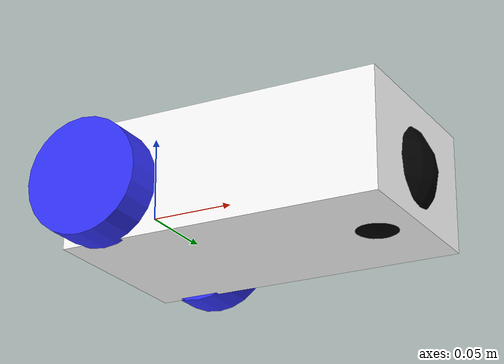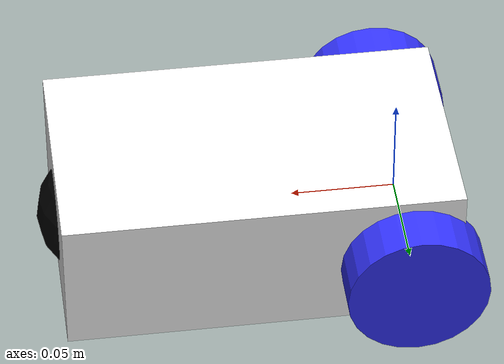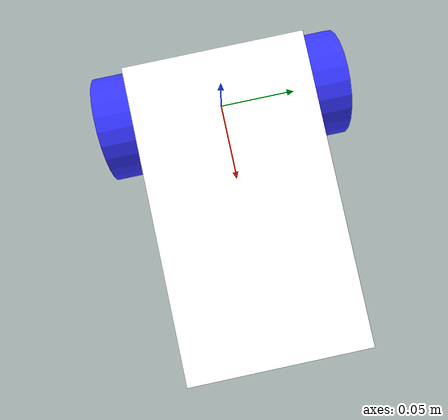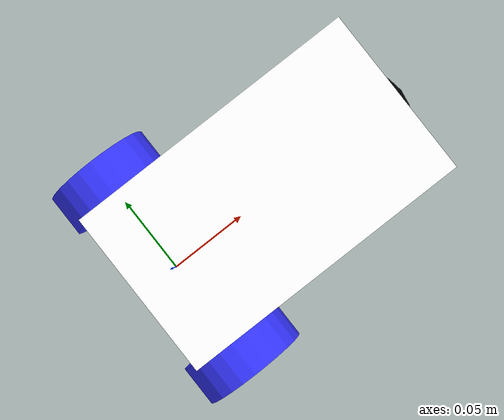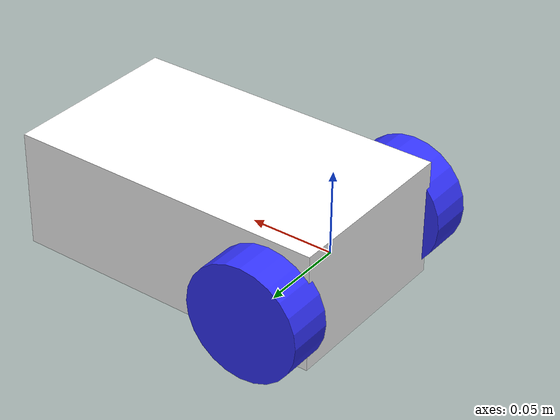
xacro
<?xml version="1.0"?>
<robot xmlns:xacro="http://www.ros.org/wiki/xacro" >

    <xacro:include filename="inertial_macros.xacro"/>

    <material name="white">
        <color rgba="1 1 1 1" />
    </material>

    <material name="orange">
        <color rgba="1 0.3 0.1 1"/>
    </material>

    <material name="blue">
        <color rgba="0.2 0.2 1 1"/>
    </material>

    <material name="black">
        <color rgba="0 0 0 1"/>
    </material>

    <material name="red">
        <color rgba="1 0 0 1"/>
    </material>

    <!-- BASE LINK -->

    <link name="base_link">

    </link>

    <!-- BASE_FOOTPRINT LINK -->

    <joint name="base_footprint_joint" type="fixed">
        <parent link="base_link"/>
        <child link="base_footprint"/>
        <origin xyz="0 0 0" rpy="0 0 0"/>
    </joint>

    <link name="base_footprint">
    </link>

    <!-- CHASSIS LINK -->

    <joint name="chassis_joint" type="fixed">
        <parent link="base_link"/>
        <child link="chassis"/>
        <origin xyz="-0.025 0 0"/>
    </joint>

    <link name="chassis">
        <visual>
            <origin xyz="0.095 0 0.0035"/>
            <geometry>
                <box size="0.19 0.11 0.07"/>
            </geometry>
            <material name="white"/>
        </visual>
        <collision>
            <origin xyz="0.095 0 0.0035"/>
            <geometry>
                <box size="0.19 0.11 0.07"/>
            </geometry>
        </collision>
        <xacro:inertial_box mass="1.35" x="0.19" y="0.11" z="0.07">
            <origin xyz="0.095 0 0.0035" rpy="0 0 0"/>
        </xacro:inertial_box>
    </link>

    <gazebo reference="chassis">
        <material>Gazebo/White</material>
    </gazebo>

    <!-- LEFT WHEEL LINK -->

    <joint name="left_wheel_joint" type="continuous">
        <parent link="base_link"/>
        <child link="left_wheel"/>
        <origin xyz="0 0.065 0" rpy="-${pi/2} 0 0" />
        <axis xyz="0 0 1"/>
    </joint>

    <link name="left_wheel">
        <visual>
            <geometry>
                <cylinder radius="0.034" length="0.026"/>
            </geometry>
            <material name="blue"/>
        </visual>
        <collision>
            <geometry>
                <sphere radius="0.034"/>
            </geometry>
        </collision>
        <xacro:inertial_cylinder mass="0.1" length="0.026" radius="0.05">
            <origin xyz="0 0 0" rpy="0 0 0"/>
        </xacro:inertial_cylinder>
    </link>

    <gazebo reference="left_wheel">
        <material>Gazebo/Blue</material>
    </gazebo>

    <!-- RIGHT WHEEL LINK -->

    <joint name="right_wheel_joint" type="continuous">
        <parent link="base_link"/>
        <child link="right_wheel"/>
        <origin xyz="0 -0.065 0" rpy="${pi/2} 0 0" />
        <axis xyz="0 0 -1"/>
    </joint>

    <link name="right_wheel">
        <visual>
            <geometry>
                <cylinder radius="0.034" length="0.026"/>
            </geometry>
            <material name="blue"/>
        </visual>
        <collision>
            <geometry>
                <sphere radius="0.034"/>
            </geometry>
        </collision>
        <xacro:inertial_cylinder mass="0.1" length="0.026" radius="0.05">
            <origin xyz="0 0 0" rpy="0 0 0"/>
        </xacro:inertial_cylinder>
    </link>

    <gazebo reference="right_wheel">
        <material>Gazebo/Blue</material>
    </gazebo>

    <!-- CASTER WHEEL LINK -->

    <joint name="caster_wheel_joint" type="fixed">
        <parent link="chassis"/>
        <child link="caster_wheel"/>
        <origin xyz="0.165 0 0"/>
    </joint>

    <link name="caster_wheel">
        <visual>
            <geometry>
                <sphere radius="0.034"/>
            </geometry>
            <material name="black"/>
        </visual>
        <collision>
            <geometry>
                <sphere radius="0.034"/>
            </geometry>
        </collision>
        <xacro:inertial_sphere mass="0.1" radius="0.034">
            <origin xyz="0 0 0" rpy="0 0 0"/>
        </xacro:inertial_sphere>
    </link>

    <gazebo reference="caster_wheel">
        <material>Gazebo/Black</material>
        <mu1 value="0.01"/>
        <mu2 value="0.01"/>
    </gazebo>

</robot>
